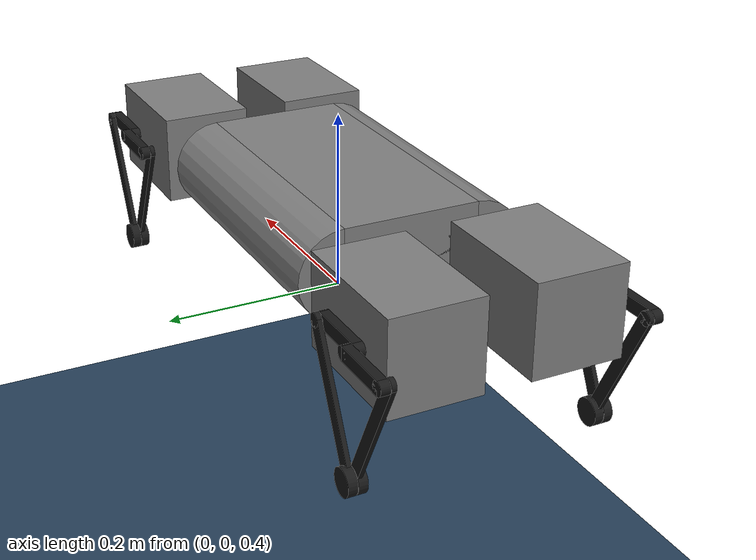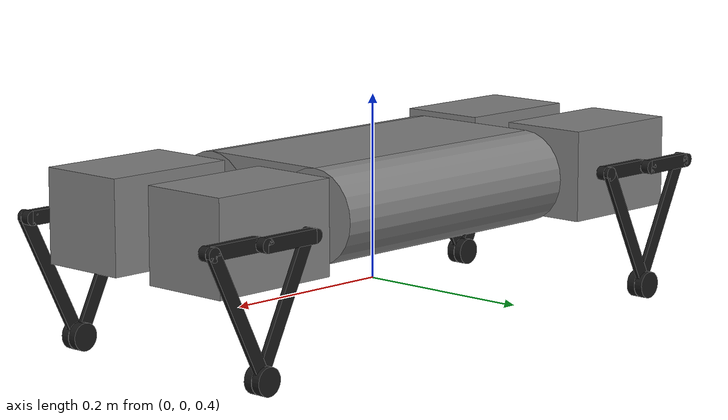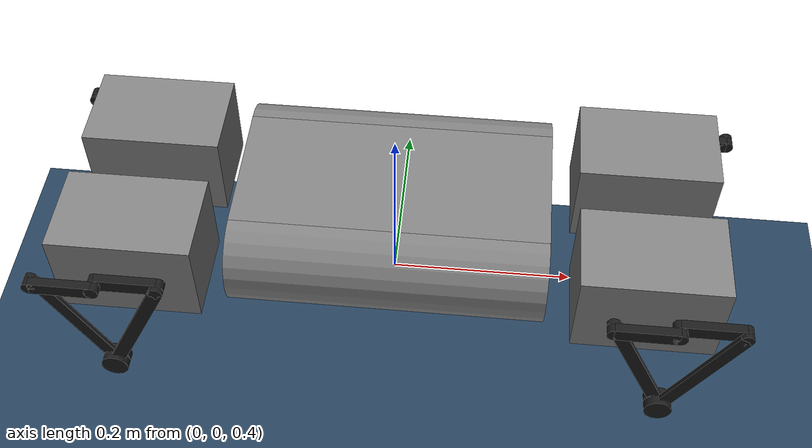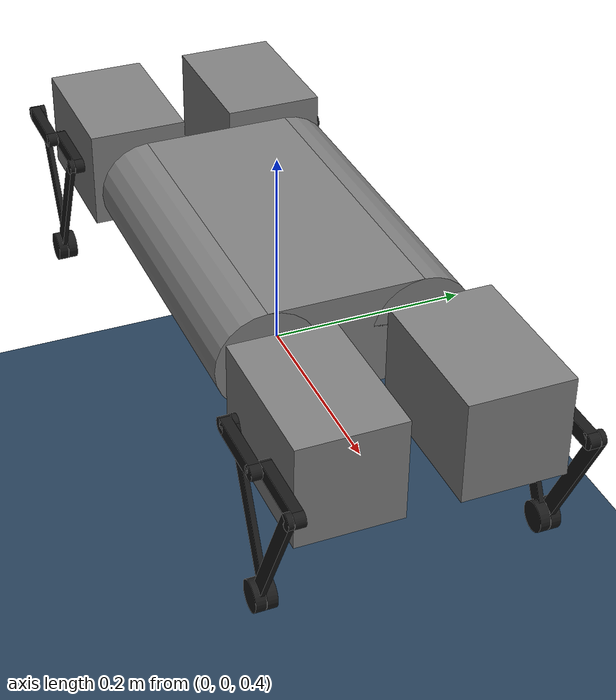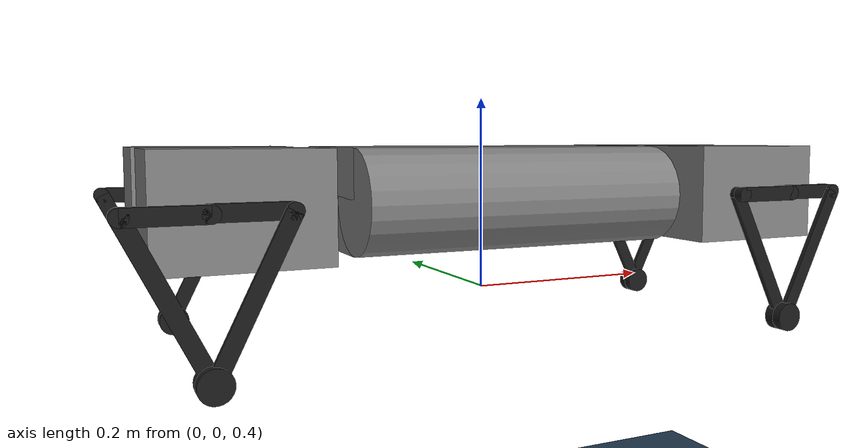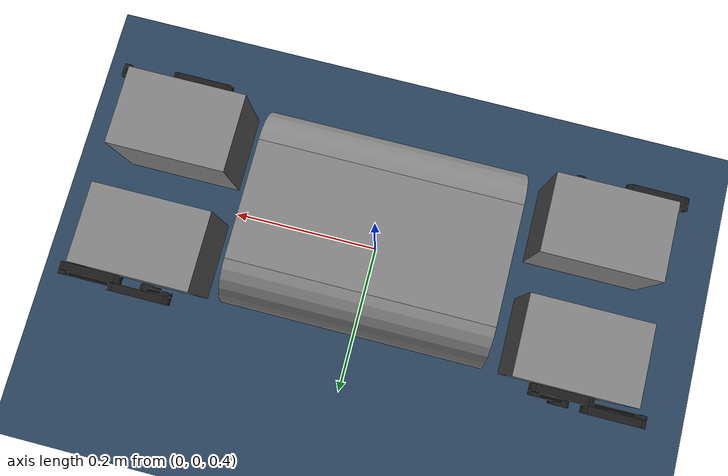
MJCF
<mujoco model="selqie_scene">
  <include file="selqie.xml"/>

  <statistic center="0 0 0.1" extent="0.8"/>

  <visual>
    <headlight diffuse="0.6 0.6 0.6" ambient="0.3 0.3 0.3" specular="0 0 0"/>
    <rgba haze="0.15 0.25 0.35 1"/>
    <global azimuth="120" elevation="-20"/>
  </visual>

  <asset>
    <texture type="skybox" builtin="gradient" rgb1="0.3 0.5 0.7" rgb2="0 0 0" width="512" height="3072"/>
    <texture type="2d" name="groundplane" builtin="checker" mark="edge" rgb1="0.2 0.3 0.4" rgb2="0.1 0.2 0.3"
      markrgb="0.8 0.8 0.8" width="300" height="300"/>
    <material name="groundplane" texture="groundplane" texuniform="true" texrepeat="5 5" reflectance="0.2"/>
    <material name="obstacle" specular="0" shininess="0.25" rgba="0.0 0.5 0.0 1"/>
  </asset>

  <worldbody>
    <light pos="0 0 1.5" dir="0 0 -1" directional="true"/>
    <geom name="floor" size="0 0 0.05" type="plane" material="groundplane"/>

  </worldbody>

</mujoco>

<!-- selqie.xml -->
<!-- SELQIE MuJoCo Model -->
<!-- Made by Jonathan Boylan -->
<!-- XML Docs: https://mujoco.readthedocs.io/en/stable/XMLreference.html -->
<mujoco model="selqie">
    <compiler angle="radian" autolimits="true"/>

    <!-- Parameters (in SI Units) -->
    <option timestep="0.001"/>
    <option integrator="implicit"/> <!-- Euler, RK4, implicit, implicitfast -->
    <option solver="Newton"/> <!-- PGS, CG, Newton -->
    <option gravity="0 0 -1.15"/>
    <option density="1000" viscosity="0.0009"/>

    <!-- Assets -->
    <asset>
        <material name="aluminum" shininess="0.25" rgba="0.5 0.5 0.5 1.0"/>
        <material name="pla" shininess="0" rgba="0.1 0.1 0.1 1.0"/>
    </asset>

    <!-- Model -->
    <worldbody>
        <light name="spotlight" mode="targetbodycom" target="base_link" pos="0 -1 2"/>

        <!-- Base Link Frame -->
        <body name="base_link" pos="0 0 0.5" euler="0 0 0">
            <freejoint/>

            <!-- Body -->
            <inertial pos="0 0 0" mass="10.0" diaginertia="0.0604 0.0310 0.0748"/>
            <geom type="box" size="0.165 0.075 0.05" material="aluminum"/>
            <geom type="cylinder" size="0.05 0.165" pos="0 0.075 0" euler="0 1.5708 0" material="aluminum"/>
            <geom type="cylinder" size="0.05 0.165" pos="0 -0.075 0" euler="0 1.5708 0" material="aluminum"/>

            <!-- Front Left Motor Box -->
            <body pos="0.27 0.075 0" euler="0 0 0">
                <inertial pos="0 0 0" mass="2.2" diaginertia="0.0037 0.0060 0.0060"/>
                <geom type="box" size="0.075 0.05 0.05" material="aluminum"/>

                <!-- Front Left Thigh A Frame -->
                <body pos="0.03 0.0505 0" euler="0 0 0">
                    <joint name="motor0" axis="0 -1 0"/>
                    <inertial pos="0.033 0.005 0" mass="0.01" diaginertia="0.0000003 0.000004 0.000004"/>
                    <geom type="cylinder" size="0.0075 0.005" pos="0 0.005 0" euler="1.5708 0 0" material="pla"/>
                    <geom type="box" size="0.033 0.005 0.0075" pos="0.033 0.005 0" material="pla"/>
                    <geom type="cylinder" size="0.0075 0.005" pos="0.066 0.005 0" euler="1.5708 0 0" material="pla"/>

                    <!-- Front Left Calf A Frame-->
                    <body pos="0.066 0.0105 0" euler="0 2.026395 0">
                        <joint axis="0 1 0"/>
                        <inertial pos="0.075 0.0025 0" mass="0.01" diaginertia="0.0000003 0.000002 0.000002"/>
                        <geom type="cylinder" size="0.0075 0.0025" pos="0 0.0025 0" euler="1.5708 0 0" material="pla"/>
                        <geom type="box" size="0.075 0.0025 0.0075" pos="0.075 0.0025 0" material="pla"/>

                        <!-- Front Left Toe A Frame -->
                        <body name="toeFLA" pos="0.15 -0.0005 0" euler="0 0 0">
                            <inertial pos="0 0.0055 0" mass="0.05" diaginertia="0.00005 0.00005 0.00005"/>
                            <geom type="cylinder" size="0.015 0.005" pos="0 0.0055 0" euler="1.5708 0 0" material="pla"/>
                        </body>
                    </body>
                </body>

                <!-- Front Left Thigh B Frame -->
                <body pos="0.03 0.061 0" euler="0 3.1415926 0">
                    <joint name="motor1" axis="0 1 0"/>
                    <inertial pos="0.033 0.005 0" mass="0.01" diaginertia="0.0000003 0.000004 0.000004"/>
                    <geom type="cylinder" size="0.0075 0.005" pos="0 0.005 0" euler="1.5708 0 0" material="pla"/>
                    <geom type="box" size="0.033 0.005 0.0075" pos="0.033 0.005 0" material="pla"/>
                    <geom type="cylinder" size="0.0075 0.005" pos="0.066 0.005 0" euler="1.5708 0 0" material="pla"/>

                    <!-- Front Left Calf B Frame-->
                    <body pos="0.066 -0.0005 0" euler="0 -2.026395 0">
                        <joint axis="0 1 0"/>
                        <inertial pos="0.075 -0.0025 0" mass="0.01" diaginertia="0.0000003 0.000002 0.000002"/>
                        <geom type="cylinder" size="0.0075 0.0025" pos="0 -0.0025 0" euler="1.5708 0 0" material="pla"/>
                        <geom type="box" size="0.075 0.0025 0.0075" pos="0.075 -0.0025 0" material="pla"/>

                        <!-- Front Left Toe B Frame -->
                        <body name="toeFLB" pos="0.15 0.0005 0" euler="0 0 0">
                            <inertial pos="0 -0.0055 0" mass="0.05" diaginertia="0.00005 0.00005 0.00005"/>
                            <geom type="cylinder" size="0.015 0.005" pos="0 -0.0055 0" euler="1.5708 0 0" material="pla"/>
                        </body>
                    </body>
                </body>
            </body>

            <!-- Rear Left Motor Box -->
            <body pos="-0.27 0.075 0" euler="0 0 0">
                <inertial pos="0 0 0" mass="2.2" diaginertia="0.0037 0.0060 0.0060"/>
                <geom type="box" size="0.075 0.05 0.05" material="aluminum"/>
                <!-- Rear Left Thigh A Frame -->
                <body pos="-0.03 0.0505 0" euler="0 0 0">
                    <joint name="motor2" axis="0 -1 0"/>
                    <inertial pos="0.033 0.005 0" mass="0.01" diaginertia="0.0000003 0.000004 0.000004"/>
                    <geom type="cylinder" size="0.0075 0.005" pos="0 0.005 0" euler="1.5708 0 0" material="pla"/>
                    <geom type="box" size="0.033 0.005 0.0075" pos="0.033 0.005 0" material="pla"/>
                    <geom type="cylinder" size="0.0075 0.005" pos="0.066 0.005 0" euler="1.5708 0 0" material="pla"/>

                    <!-- Rear Left Calf A Frame-->
                    <body pos="0.066 0.0105 0" euler="0 2.026395 0">
                        <joint axis="0 1 0"/>
                        <inertial pos="0.075 0.0025 0" mass="0.01" diaginertia="0.0000003 0.000002 0.000002"/>
                        <geom type="cylinder" size="0.0075 0.0025" pos="0 0.0025 0" euler="1.5708 0 0" material="pla"/>
                        <geom type="box" size="0.075 0.0025 0.0075" pos="0.075 0.0025 0" material="pla"/>

                        <!-- Rear Left Toe A Frame -->
                        <body name="toeRLA" pos="0.15 -0.0005 0" euler="0 0 0">
                            <inertial pos="0 0.0055 0" mass="0.05" diaginertia="0.00005 0.00005 0.00005"/>
                            <geom type="cylinder" size="0.015 0.005" pos="0 0.0055 0" euler="1.5708 0 0" material="pla"/>
                        </body>
                    </body>
                </body>

                <!-- Rear Left Thigh B Frame -->
                <body pos="-0.03 0.061 0" euler="0 3.1415926 0">
                    <joint name="motor3" axis="0 1 0"/>
                    <inertial pos="0.033 0.005 0" mass="0.01" diaginertia="0.0000003 0.000004 0.000004"/>
                    <geom type="cylinder" size="0.0075 0.005" pos="0 0.005 0" euler="1.5708 0 0" material="pla"/>
                    <geom type="box" size="0.033 0.005 0.0075" pos="0.033 0.005 0" material="pla"/>
                    <geom type="cylinder" size="0.0075 0.005" pos="0.066 0.005 0" euler="1.5708 0 0" material="pla"/>

                    <!-- Rear Left Calf B Frame-->
                    <body pos="0.066 -0.0005 0" euler="0 -2.026395 0">
                        <joint axis="0 1 0"/>
                        <inertial pos="0.075 -0.0025 0" mass="0.01" diaginertia="0.0000003 0.000002 0.000002"/>
                        <geom type="cylinder" size="0.0075 0.0025" pos="0 -0.0025 0" euler="1.5708 0 0" material="pla"/>
                        <geom type="box" size="0.075 0.0025 0.0075" pos="0.075 -0.0025 0" material="pla"/>

                        <!-- Rear Left Toe B Frame -->
                        <body name="toeRLB" pos="0.15 0.0005 0" euler="0 0 0">
                            <inertial pos="0 -0.0055 0" mass="0.05" diaginertia="0.00005 0.00005 0.00005"/>
                            <geom type="cylinder" size="0.015 0.005" pos="0 -0.0055 0" euler="1.5708 0 0" material="pla"/>
                        </body>
                    </body>
                </body>
            </body>

            <!-- Rear Right Motor Box -->
            <body pos="-0.27 -0.075 0" euler="0 0 0">
                <inertial pos="0 0 0" mass="2.2" diaginertia="0.0037 0.0060 0.0060"/>
                <geom type="box" size="0.075 0.05 0.05" material="aluminum"/>
                <!-- Rear Right Thigh A Frame -->
                <body pos="-0.03 -0.0505 0" euler="0 0 0">
                    <joint name="motor4" axis="0 1 0"/>
                    <inertial pos="0.033 -0.005 0" mass="0.01" diaginertia="0.0000003 0.000004 0.000004"/>
                    <geom type="cylinder" size="0.0075 0.005" pos="0 -0.005 0" euler="1.5708 0 0" material="pla"/>
                    <geom type="box" size="0.033 0.005 0.0075" pos="0.033 -0.005 0" material="pla"/>
                    <geom type="cylinder" size="0.0075 0.005" pos="0.066 -0.005 0" euler="1.5708 0 0" material="pla"/>

                    <!-- Rear Right Calf A Frame-->
                    <body pos="0.066 -0.0105 0" euler="0 2.026395 0">
                        <joint axis="0 1 0"/>
                        <inertial pos="0.075 -0.0025 0" mass="0.01" diaginertia="0.0000003 0.000002 0.000002"/>
                        <geom type="cylinder" size="0.0075 0.0025" pos="0 -0.0025 0" euler="1.5708 0 0" material="pla"/>
                        <geom type="box" size="0.075 0.0025 0.0075" pos="0.075 -0.0025 0" material="pla"/>

                        <!-- Rear Right Toe A Frame -->
                        <body name="toeRRA" pos="0.15 0.0005 0" euler="0 0 0">
                            <inertial pos="0 -0.0055 0" mass="0.05" diaginertia="0.00005 0.00005 0.00005"/>
                            <geom type="cylinder" size="0.015 0.005" pos="0 -0.0055 0" euler="1.5708 0 0" material="pla"/>
                        </body>
                    </body>
                </body>

                <!-- Rear Right Thigh B Frame -->
                <body pos="-0.03 -0.061 0" euler="0 3.1415926 0">
                    <joint name="motor5" axis="0 -1 0"/>
                    <inertial pos="0.033 -0.005 0" mass="0.01" diaginertia="0.0000003 0.000004 0.000004"/>
                    <geom type="cylinder" size="0.0075 0.005" pos="0 -0.005 0" euler="1.5708 0 0" material="pla"/>
                    <geom type="box" size="0.033 0.005 0.0075" pos="0.033 -0.005 0" material="pla"/>
                    <geom type="cylinder" size="0.0075 0.005" pos="0.066 -0.005 0" euler="1.5708 0 0" material="pla"/>

                    <!-- Rear Right Calf B Frame-->
                    <body pos="0.066 0.0005 0" euler="0 -2.026395 0">
                        <joint axis="0 1 0"/>
                        <inertial pos="0.075 0.0025 0" mass="0.01" diaginertia="0.0000003 0.000002 0.000002"/>
                        <geom type="cylinder" size="0.0075 0.0025" pos="0 0.0025 0" euler="1.5708 0 0" material="pla"/>
                        <geom type="box" size="0.075 0.0025 0.0075" pos="0.075 0.0025 0" material="pla"/>

                        <!-- Rear Right Toe B Frame -->
                        <body name="toeRRB" pos="0.15 -0.0005 0" euler="0 0 0">
                            <inertial pos="0 0.0055 0" mass="0.05" diaginertia="0.00005 0.00005 0.00005"/>
                            <geom type="cylinder" size="0.015 0.005" pos="0 0.0055 0" euler="1.5708 0 0" material="pla"/>
                        </body>
                    </body>
                </body>
            </body>

            <!-- Front Right Motor Box -->
            <body pos="0.27 -0.075 0" euler="0 0 0">
                <inertial pos="0 0 0" mass="2.2" diaginertia="0.0037 0.0060 0.0060"/>
                <geom type="box" size="0.075 0.05 0.05" material="aluminum"/>
                <!-- Front Right Thigh A Frame -->
                <body pos="0.03 -0.0505 0" euler="0 0 0">
                    <joint name="motor6" axis="0 1 0"/>
                    <inertial pos="0.033 -0.005 0" mass="0.01" diaginertia="0.0000003 0.000004 0.000004"/>
                    <geom type="cylinder" size="0.0075 0.005" pos="0 -0.005 0" euler="1.5708 0 0" material="pla"/>
                    <geom type="box" size="0.033 0.005 0.0075" pos="0.033 -0.005 0" material="pla"/>
                    <geom type="cylinder" size="0.0075 0.005" pos="0.066 -0.005 0" euler="1.5708 0 0" material="pla"/>

                    <!-- Front Right Calf A Frame-->
                    <body pos="0.066 -0.0105 0" euler="0 2.026395 0">
                        <joint axis="0 1 0"/>
                        <inertial pos="0.075 -0.0025 0" mass="0.01" diaginertia="0.0000003 0.000002 0.000002"/>
                        <geom type="cylinder" size="0.0075 0.0025" pos="0 -0.0025 0" euler="1.5708 0 0" material="pla"/>
                        <geom type="box" size="0.075 0.0025 0.0075" pos="0.075 -0.0025 0" material="pla"/>

                        <!-- Front Right Toe A Frame -->
                        <body name="toeFRA" pos="0.15 0.0005 0" euler="0 0 0">
                            <inertial pos="0 -0.0055 0" mass="0.05" diaginertia="0.00005 0.00005 0.00005"/>
                            <geom type="cylinder" size="0.015 0.005" pos="0 -0.0055 0" euler="1.5708 0 0" material="pla"/>
                        </body>
                    </body>
                </body>

                <!-- Front Right Thigh B Frame -->
                <body pos="0.03 -0.061 0" euler="0 3.1415926 0">
                    <joint name="motor7" axis="0 -1 0"/>
                    <inertial pos="0.033 -0.005 0" mass="0.01" diaginertia="0.0000003 0.000004 0.000004"/>
                    <geom type="cylinder" size="0.0075 0.005" pos="0 -0.005 0" euler="1.5708 0 0" material="pla"/>
                    <geom type="box" size="0.033 0.005 0.0075" pos="0.033 -0.005 0" material="pla"/>
                    <geom type="cylinder" size="0.0075 0.005" pos="0.066 -0.005 0" euler="1.5708 0 0" material="pla"/>

                    <!-- Front Right Calf B Frame-->
                    <body pos="0.066 0.0005 0" euler="0 -2.026395 0">
                        <joint axis="0 1 0"/>
                        <inertial pos="0.075 0.0025 0" mass="0.01" diaginertia="0.0000003 0.000002 0.000002"/>
                        <geom type="cylinder" size="0.0075 0.0025" pos="0 0.0025 0" euler="1.5708 0 0" material="pla"/>
                        <geom type="box" size="0.075 0.0025 0.0075" pos="0.075 0.0025 0" material="pla"/>

                        <!-- Front Right Toe B Frame -->
                        <body name="toeFRB" pos="0.15 -0.0005 0" euler="0 0 0">
                            <inertial pos="0 0.0055 0" mass="0.05" diaginertia="0.00005 0.00005 0.00005"/>
                            <geom type="cylinder" size="0.015 0.005" pos="0 0.0055 0" euler="1.5708 0 0" material="pla"/>
                        </body>
                    </body>
                </body>
            </body>

        </body>
    </worldbody>

    <equality>
        <connect body1="toeFLA" body2="toeFLB" anchor="0 0 0" solref="0.005 1" solimp="1 1 1 0 1"/>
        <connect body1="toeRLA" body2="toeRLB" anchor="0 0 0" solref="0.005 1" solimp="1 1 1 0 1"/>
        <connect body1="toeRRA" body2="toeRRB" anchor="0 0 0" solref="0.005 1" solimp="1 1 1 0 1"/>
        <connect body1="toeFRA" body2="toeFRB" anchor="0 0 0" solref="0.005 1" solimp="1 1 1 0 1"/>
    </equality>

    <!-- Actuators -->
    <actuator>
        <motor joint="motor0" ctrlrange="-10 10"/>
        <motor joint="motor1" ctrlrange="-10 10"/>
        <motor joint="motor2" ctrlrange="-10 10"/>
        <motor joint="motor3" ctrlrange="-10 10"/>
        <motor joint="motor4" ctrlrange="-10 10"/>
        <motor joint="motor5" ctrlrange="-10 10"/>
        <motor joint="motor6" ctrlrange="-10 10"/>
        <motor joint="motor7" ctrlrange="-10 10"/>
    </actuator>

</mujoco>
